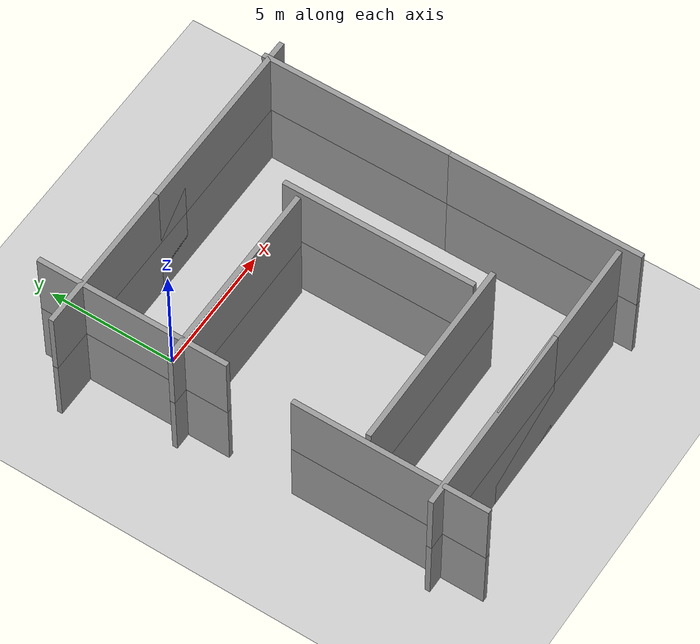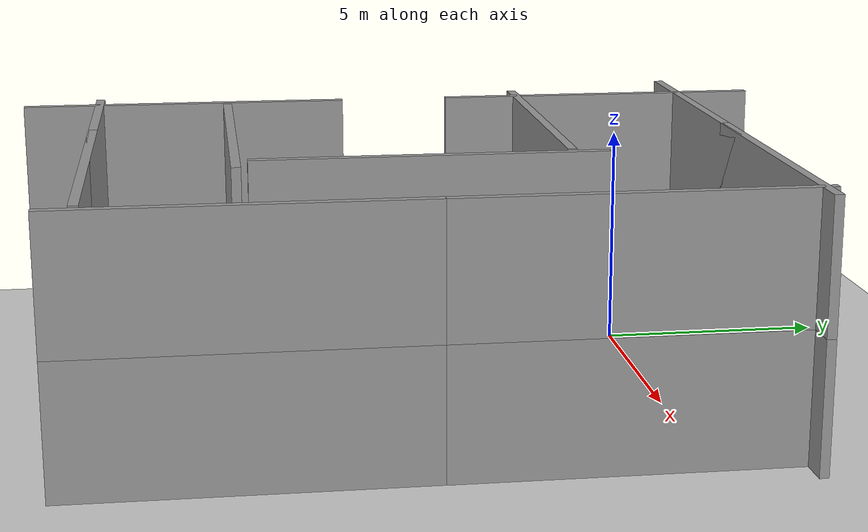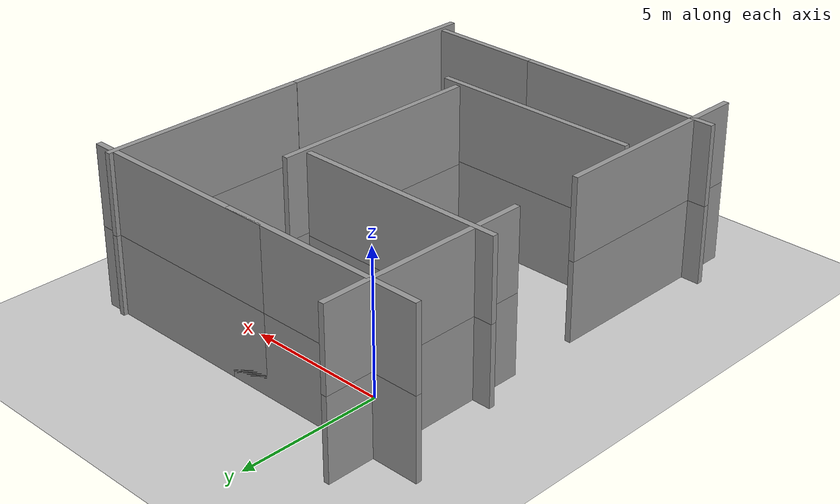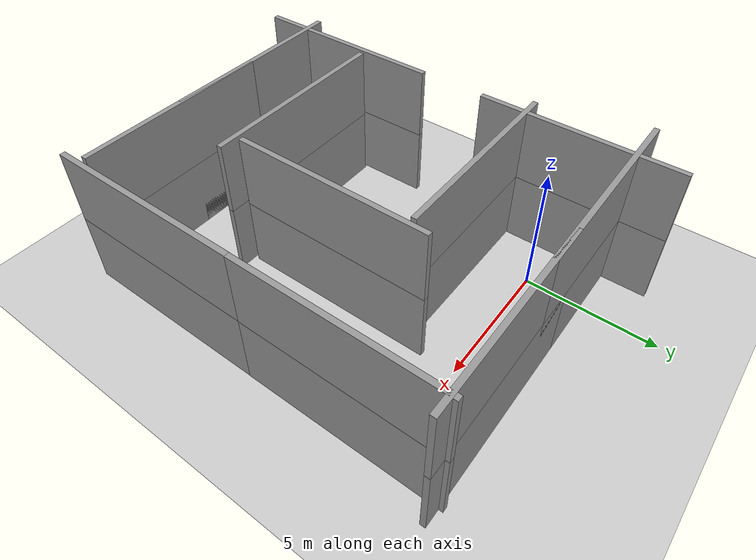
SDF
<?xml version="1.0" ?>
<sdf version="1.5">
  <world name="default">
    <!-- A global light source -->
    <include>
      <uri>model://sun</uri>
    </include>
    <!-- A ground plane -->
    <include>
      <uri>model://ground_plane</uri>
    </include>
    <physics name='default_physics' default='0' type='ode'>
      <gravity>0 0 -9.8066</gravity>
      <ode>
        <solver>
          <type>quick</type>
          <iters>10</iters>
          <sor>1.3</sor>
          <use_dynamic_moi_rescaling>0</use_dynamic_moi_rescaling>
        </solver>
        <constraints>
          <cfm>0</cfm>
          <erp>0.2</erp>
          <contact_max_correcting_vel>100</contact_max_correcting_vel>
          <contact_surface_layer>0.001</contact_surface_layer>
        </constraints>
      </ode>
      <max_step_size>0.004</max_step_size>
      <real_time_factor>1</real_time_factor>
      <real_time_update_rate>250</real_time_update_rate>
      <magnetic_field>6.0e-6 2.3e-5 -4.2e-5</magnetic_field>
    </physics>

    <include>
      <name>grey_wall</name>
      <uri>model://grey_wall</uri>
      <pose>-2 0 0 0 0 -1.57</pose>
    </include>

    <include>
      <name>grey_wall2</name>
      <uri>model://grey_wall</uri>
      <pose>0 2 0 0 -0 0</pose>
    </include>

    <include>
      <name>grey_wall3</name>
      <uri>model://grey_wall</uri>
      <pose>1 -2 0 0 -0 0</pose>
    </include>

    <include>
      <name>grey_wall4</name>
      <uri>model://grey_wall</uri>
      <pose>6 2 0 0 -0 0</pose>
    </include>

    <include>
      <name>grey_wall5</name>
      <uri>model://grey_wall</uri>
      <pose>9 -1.5 0 0 -0 -1.57</pose>
    </include>

    <include>
      <name>grey_wall6</name>
      <uri>model://grey_wall</uri>
      <pose>5 -5 0 0 -0 -1.57</pose>
    </include>

    <include>
      <name>grey_wall7</name>
      <uri>model://grey_wall</uri>
      <pose>9 -9 0 0 -0 -1.57</pose>
    </include>

    <include>
      <name>grey_wall8</name>
      <uri>model://grey_wall</uri>
      <pose>2 -9 0 0 -0 0</pose>
    </include>

    <include>
      <name>grey_wall9</name>
      <uri>model://grey_wall</uri>
      <pose>5 -12 0 0 -0 0</pose>
    </include>

    <include>
      <name>grey_wall10</name>
      <uri>model://grey_wall</uri>
      <pose>1 -12 0 0 -0 0</pose>
    </include>

    <include>
      <name>grey_wall11</name>
      <uri>model://grey_wall</uri>
      <pose>-2 -10 0 0 -0 -1.57</pose>
    </include>

        <include>
          <name>grey_wall_up</name>
          <uri>model://grey_wall</uri>
          <pose>-2 0 2.8 0 0 -1.57</pose>
        </include>

        <include>
          <name>grey_wall2_up</name>
          <uri>model://grey_wall</uri>
          <pose>0 2 2.8 0 -0 0</pose>
        </include>

        <include>
          <name>grey_wall3_up</name>
          <uri>model://grey_wall</uri>
          <pose>1 -2 2.8 0 -0 0</pose>
        </include>

        <include>
          <name>grey_wall4_up</name>
          <uri>model://grey_wall</uri>
          <pose>6 2 2.8 0 -0 0</pose>
        </include>

        <include>
          <name>grey_wall5_up</name>
          <uri>model://grey_wall</uri>
          <pose>9 -1.5 2.8 0 -0 -1.57</pose>
        </include>

        <include>
          <name>grey_wall6_up</name>
          <uri>model://grey_wall</uri>
          <pose>5 -5 2.8 0 -0 -1.57</pose>
        </include>

        <include>
          <name>grey_wall7_up</name>
          <uri>model://grey_wall</uri>
          <pose>9 -9 2.8 0 -0 -1.57</pose>
        </include>

        <include>
          <name>grey_wall8_up</name>
          <uri>model://grey_wall</uri>
          <pose>2 -9 2.8 0 -0 0</pose>
        </include>

        <include>
          <name>grey_wall9_up</name>
          <uri>model://grey_wall</uri>
          <pose>5 -12 2.8 0 -0 0</pose>
        </include>

        <include>
          <name>grey_wall10_up</name>
          <uri>model://grey_wall</uri>
          <pose>1 -12 2.8 0 -0 0</pose>
        </include>

        <include>
          <name>grey_wall11_up</name>
          <uri>model://grey_wall</uri>
          <pose>-2 -10 2.8 0 -0 -1.57</pose>
        </include>

  </world>
</sdf>

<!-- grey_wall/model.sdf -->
<sdf version="1.5">
  <model name="grey_wall">
    <static>true</static>
    <link name="link">
      <pose>0 0 1.4 0 0 0</pose>
      <collision name="collision">
        <geometry>
          <box>
            <size>7.5 0.2 2.8</size>
          </box>
        </geometry>
      </collision>
      <visual name="visual">
        <cast_shadows>false</cast_shadows>
        <geometry>
          <box>
            <size>7.5 0.2 2.8</size>
          </box>
        </geometry>
        <material>
          <script>
            <uri>model://../model_source/models/grey_wall/materials/scripts</uri>
            <uri>model://../model_source/models/grey_wall/materials/textures</uri>
            <name>vrc/grey_wall</name>
          </script>
        </material>
      </visual>
    </link>
  </model>
</sdf>
